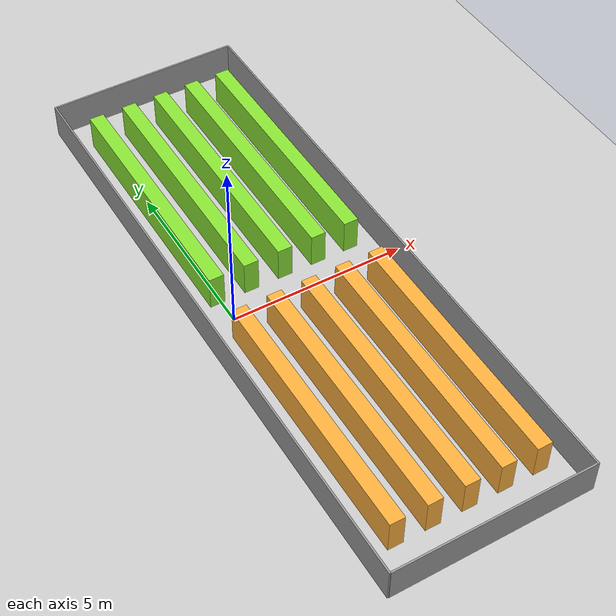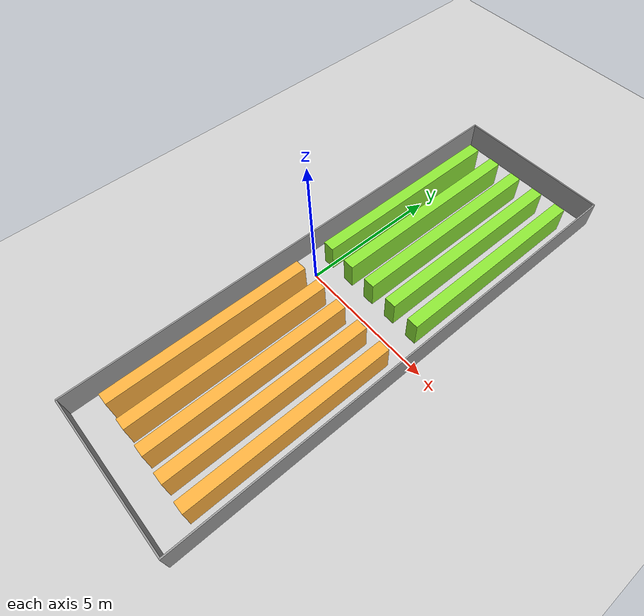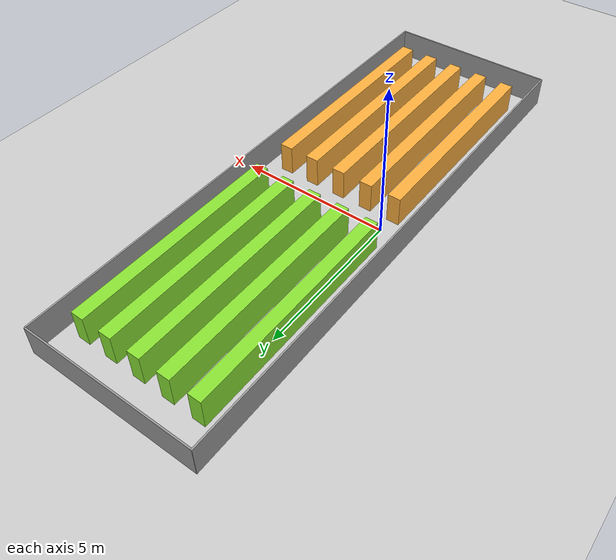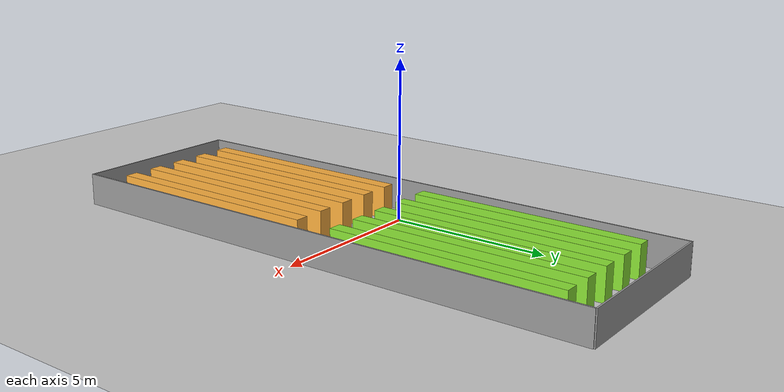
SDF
<sdf version="1.6">
 <world name="default">
  <light name="sun" type="directional">
   <pose>0 0 10 0 -0 0</pose>
   <diffuse>0.8 0.8 0.8 1</diffuse>
   <specular>0.2 0.2 0.2 1</specular>
   <attenuation>
    <range>1000</range>
    <constant>0.9</constant>
    <linear>0.01</linear>
    <quadratic>0.001</quadratic>
   </attenuation>
   <direction>-0.5 0.1 -0.9</direction>
  </light>
  <model name="ground_plane">
   <static>1</static>
   <link name="link">
    <collision name="collision">
     <geometry><plane><normal>0 0 1</normal><size>100 100</size></plane></geometry>
     <surface>
      <contact><collide_bitmask>65535</collide_bitmask></contact>
      <friction><ode><mu>100</mu><mu2>50</mu2></ode></friction>
     </surface>
    </collision>
    <visual name="visual">
     <cast_shadows>0</cast_shadows>
     <geometry><plane><normal>0 0 1</normal><size>100 100</size></plane></geometry>
     <material>
      <script><uri>file://media/materials/scripts/gazebo.material</uri><name>Gazebo/Grey</name></script>
     </material>
    </visual>
   </link>
  </model>
  <gravity>0 0 -9.8</gravity>
  <magnetic_field>6e-06 2.3e-05 -4.2e-05</magnetic_field>
  <atmosphere type="adiabatic"/>
  <physics name="default_physics" default="0" type="ode">
   <max_step_size>0.001</max_step_size>
   <real_time_factor>1</real_time_factor>
   <real_time_update_rate>1000</real_time_update_rate>
  </physics>
  <scene><ambient>0.4 0.4 0.4 1</ambient><background>0.7 0.7 0.7 1</background><shadows>1</shadows></scene>
  <audio><device>default</device></audio>
  <spherical_coordinates>
   <surface_model>EARTH_WGS84</surface_model>
   <latitude_deg>0</latitude_deg>
   <longitude_deg>0</longitude_deg>
   <elevation>0</elevation>
   <heading_deg>0</heading_deg>
  </spherical_coordinates>
  <model name="wall1">
   <link name="link">
    <inertial>
     <mass>1</mass>
     <inertia>
      <ixx>0.166667</ixx>
      <ixy>0</ixy>
      <ixz>0</ixz>
      <iyy>0.166667</iyy>
      <iyz>0</iyz>
      <izz>0.166667</izz>
     </inertia>
    </inertial>
    <visual name="visual">
     <geometry><box><size>0.05 17.55 1</size></box></geometry>
     <material>
      <script><name>Gazebo/Grey</name><uri>file://media/materials/scripts/gazebo.material</uri></script>
      <shader type="vertex"><normal_map>__default__</normal_map></shader>
      <ambient>0 0 0 1</ambient>
      <diffuse>0.7 0.7 0.7 1</diffuse>
      <specular>0.01 0.01 0.01 1</specular>
      <emissive>0 0 0 1</emissive>
     </material>
    </visual>
    <collision name="collision">
     <geometry><box><size>1 1 1</size></box></geometry>
     <surface>
      <friction>
       <ode><mu>1</mu><mu2>1</mu2><fdir1>0 0 0</fdir1><slip1>0</slip1><slip2>0</slip2></ode>
       <torsional>
        <coefficient>1</coefficient>
        <patch_radius>0</patch_radius>
        <surface_radius>0</surface_radius>
        <use_patch_radius>1</use_patch_radius>
        <ode><slip>0</slip></ode>
       </torsional>
      </friction>
      <bounce><restitution_coefficient>0</restitution_coefficient><threshold>1e+06</threshold></bounce>
      <contact>
       <collide_without_contact>0</collide_without_contact>
       <collide_without_contact_bitmask>1</collide_without_contact_bitmask>
       <collide_bitmask>1</collide_bitmask>
       <ode>
        <soft_cfm>0</soft_cfm>
        <soft_erp>0.2</soft_erp>
        <kp>1e+13</kp>
        <kd>1</kd>
        <max_vel>0.01</max_vel>
        <min_depth>0</min_depth>
       </ode>
       <bullet>
        <split_impulse>1</split_impulse>
        <split_impulse_penetration_threshold>-0.01</split_impulse_penetration_threshold>
        <soft_cfm>0</soft_cfm>
        <soft_erp>0.2</soft_erp>
        <kp>1e+13</kp>
        <kd>1</kd>
       </bullet>
      </contact>
     </surface>
    </collision>
   </link>
   <static>0</static>
   <pose>-0.940116 0.069997 0.5 0 -0 5e-06</pose>
  </model>
  <model name="wall1_clone">
   <link name="link">
    <inertial>
     <mass>1</mass>
     <inertia>
      <ixx>0.166667</ixx>
      <ixy>0</ixy>
      <ixz>0</ixz>
      <iyy>0.166667</iyy>
      <iyz>0</iyz>
      <izz>0.166667</izz>
     </inertia>
    </inertial>
    <visual name="visual">
     <geometry><box><size>0.05 17.55 1</size></box></geometry>
     <material>
      <script><name>Gazebo/Grey</name><uri>file://media/materials/scripts/gazebo.material</uri></script>
      <shader type="vertex"><normal_map>__default__</normal_map></shader>
      <ambient>0.3 0.3 0.3 1</ambient>
      <diffuse>0.7 0.7 0.7 1</diffuse>
      <specular>0.01 0.01 0.01 1</specular>
      <emissive>0 0 0 1</emissive>
     </material>
    </visual>
    <collision name="collision">
     <geometry><box><size>1 1 1</size></box></geometry>
     <surface>
      <friction>
       <ode><mu>1</mu><mu2>1</mu2><fdir1>0 0 0</fdir1><slip1>0</slip1><slip2>0</slip2></ode>
       <torsional>
        <coefficient>1</coefficient>
        <patch_radius>0</patch_radius>
        <surface_radius>0</surface_radius>
        <use_patch_radius>1</use_patch_radius>
        <ode><slip>0</slip></ode>
       </torsional>
      </friction>
      <bounce><restitution_coefficient>0</restitution_coefficient><threshold>1e+06</threshold></bounce>
      <contact>
       <collide_without_contact>0</collide_without_contact>
       <collide_without_contact_bitmask>1</collide_without_contact_bitmask>
       <collide_bitmask>1</collide_bitmask>
       <ode>
        <soft_cfm>0</soft_cfm>
        <soft_erp>0.2</soft_erp>
        <kp>1e+13</kp>
        <kd>1</kd>
        <max_vel>0.01</max_vel>
        <min_depth>0</min_depth>
       </ode>
       <bullet>
        <split_impulse>1</split_impulse>
        <split_impulse_penetration_threshold>-0.01</split_impulse_penetration_threshold>
        <soft_cfm>0</soft_cfm>
        <soft_erp>0.2</soft_erp>
        <kp>1e+13</kp>
        <kd>1</kd>
       </bullet>
      </contact>
     </surface>
    </collision>
   </link>
   <static>0</static>
   <pose>4.64887 0.074809 0.499995 -1e-05 -0 -0</pose>
  </model>
  <model name="l_wall">
   <link name="link">
    <inertial>
     <mass>1</mass>
     <inertia>
      <ixx>0.166667</ixx>
      <ixy>0</ixy>
      <ixz>0</ixz>
      <iyy>0.166667</iyy>
      <iyz>0</iyz>
      <izz>0.166667</izz>
     </inertia>
    </inertial>
    <visual name="visual">
     <geometry><box><size>0.05 5.6 1</size></box></geometry>
     <material>
      <script><name>Gazebo/Grey</name><uri>file://media/materials/scripts/gazebo.material</uri></script>
      <ambient>0 0 0 1</ambient>
      <shader type="vertex"><normal_map>__default__</normal_map></shader>
      <diffuse>0.7 0.7 0.7 1</diffuse>
      <specular>0.01 0.01 0.01 1</specular>
      <emissive>0 0 0 1</emissive>
     </material>
    </visual>
    <collision name="collision">
     <geometry><box><size>1 1 1</size></box></geometry>
     <surface>
      <friction>
       <ode><mu>1</mu><mu2>1</mu2><fdir1>0 0 0</fdir1><slip1>0</slip1><slip2>0</slip2></ode>
       <torsional>
        <coefficient>1</coefficient>
        <patch_radius>0</patch_radius>
        <surface_radius>0</surface_radius>
        <use_patch_radius>1</use_patch_radius>
        <ode><slip>0</slip></ode>
       </torsional>
      </friction>
      <bounce><restitution_coefficient>0</restitution_coefficient><threshold>1e+06</threshold></bounce>
      <contact>
       <collide_without_contact>0</collide_without_contact>
       <collide_without_contact_bitmask>1</collide_without_contact_bitmask>
       <collide_bitmask>1</collide_bitmask>
       <ode>
        <soft_cfm>0</soft_cfm>
        <soft_erp>0.2</soft_erp>
        <kp>1e+13</kp>
        <kd>1</kd>
        <max_vel>0.01</max_vel>
        <min_depth>0</min_depth>
       </ode>
       <bullet>
        <split_impulse>1</split_impulse>
        <split_impulse_penetration_threshold>-0.01</split_impulse_penetration_threshold>
        <soft_cfm>0</soft_cfm>
        <soft_erp>0.2</soft_erp>
        <kp>1e+13</kp>
        <kd>1</kd>
       </bullet>
      </contact>
     </surface>
    </collision>
   </link>
   <static>0</static>
   <pose>1.87323 -8.68557 0.5 -0 -0 -1.56724</pose>
  </model>
  <model name="r_shelf_05">
   <link name="link">
    <inertial>
     <mass>1</mass>
     <inertia>
      <ixx>0.166667</ixx>
      <ixy>0</ixy>
      <ixz>0</ixz>
      <iyy>0.166667</iyy>
      <iyz>0</iyz>
      <izz>0.166667</izz>
     </inertia>
    </inertial>
    <visual name="visual">
     <geometry><box><size>0.42 7.2 1</size></box></geometry>
     <material>
      <script><name>Gazebo/Grey</name><uri>file://media/materials/scripts/gazebo.material</uri></script>
      <shader type="vertex"><normal_map>__default__</normal_map></shader>
      <ambient>0.541 0.886 0.204 1</ambient>
      <diffuse>0.7 0.7 0.7 1</diffuse>
      <specular>0.01 0.01 0.01 1</specular>
      <emissive>0 0 0 1</emissive>
     </material>
    </visual>
    <collision name="collision">
     <geometry><box><size>1 1 1</size></box></geometry>
     <surface>
      <friction>
       <ode><mu>1</mu><mu2>1</mu2><fdir1>0 0 0</fdir1><slip1>0</slip1><slip2>0</slip2></ode>
       <torsional>
        <coefficient>1</coefficient>
        <patch_radius>0</patch_radius>
        <surface_radius>0</surface_radius>
        <use_patch_radius>1</use_patch_radius>
        <ode><slip>0</slip></ode>
       </torsional>
      </friction>
      <bounce><restitution_coefficient>0</restitution_coefficient><threshold>1e+06</threshold></bounce>
      <contact>
       <collide_without_contact>0</collide_without_contact>
       <collide_without_contact_bitmask>1</collide_without_contact_bitmask>
       <collide_bitmask>1</collide_bitmask>
       <ode>
        <soft_cfm>0</soft_cfm>
        <soft_erp>0.2</soft_erp>
        <kp>1e+13</kp>
        <kd>1</kd>
        <max_vel>0.01</max_vel>
        <min_depth>0</min_depth>
       </ode>
       <bullet>
        <split_impulse>1</split_impulse>
        <split_impulse_penetration_threshold>-0.01</split_impulse_penetration_threshold>
        <soft_cfm>0</soft_cfm>
        <soft_erp>0.2</soft_erp>
        <kp>1e+13</kp>
        <kd>1</kd>
       </bullet>
      </contact>
     </surface>
    </collision>
   </link>
   <static>0</static>
   <pose>3.90089 4.27078 0.5 0 -0 -4.5e-05</pose>
  </model>
  <model name="r_shelf_02_0">
   <link name="link">
    <inertial>
     <mass>1</mass>
     <inertia>
      <ixx>0.166667</ixx>
      <ixy>0</ixy>
      <ixz>0</ixz>
      <iyy>0.166667</iyy>
      <iyz>0</iyz>
      <izz>0.166667</izz>
     </inertia>
    </inertial>
    <visual name="visual">
     <geometry><box><size>0.42 7.2 1</size></box></geometry>
     <material>
      <script><name>Gazebo/Grey</name><uri>file://media/materials/scripts/gazebo.material</uri></script>
      <shader type="vertex"><normal_map>__default__</normal_map></shader>
      <ambient>0.541 0.886 0.204 1</ambient>
      <diffuse>0.7 0.7 0.7 1</diffuse>
      <specular>0.01 0.01 0.01 1</specular>
      <emissive>0 0 0 1</emissive>
     </material>
    </visual>
    <collision name="collision">
     <geometry><box><size>1 1.89269 1</size></box></geometry>
     <surface>
      <friction>
       <ode><mu>1</mu><mu2>1</mu2><fdir1>0 0 0</fdir1><slip1>0</slip1><slip2>0</slip2></ode>
       <torsional>
        <coefficient>1</coefficient>
        <patch_radius>0</patch_radius>
        <surface_radius>0</surface_radius>
        <use_patch_radius>1</use_patch_radius>
        <ode><slip>0</slip></ode>
       </torsional>
      </friction>
      <bounce><restitution_coefficient>0</restitution_coefficient><threshold>1e+06</threshold></bounce>
      <contact>
       <collide_without_contact>0</collide_without_contact>
       <collide_without_contact_bitmask>1</collide_without_contact_bitmask>
       <collide_bitmask>1</collide_bitmask>
       <ode>
        <soft_cfm>0</soft_cfm>
        <soft_erp>0.2</soft_erp>
        <kp>1e+13</kp>
        <kd>1</kd>
        <max_vel>0.01</max_vel>
        <min_depth>0</min_depth>
       </ode>
       <bullet>
        <split_impulse>1</split_impulse>
        <split_impulse_penetration_threshold>-0.01</split_impulse_penetration_threshold>
        <soft_cfm>0</soft_cfm>
        <soft_erp>0.2</soft_erp>
        <kp>1e+13</kp>
        <kd>1</kd>
       </bullet>
      </contact>
     </surface>
    </collision>
   </link>
   <static>0</static>
   <pose>2.90089 4.27002 0.499991 -1e-05 -0 -4.3e-05</pose>
  </model>
  <model name="r_shelf_03">
   <link name="link">
    <inertial>
     <mass>1</mass>
     <inertia>
      <ixx>0.166667</ixx>
      <ixy>0</ixy>
      <ixz>0</ixz>
      <iyy>0.166667</iyy>
      <iyz>0</iyz>
      <izz>0.166667</izz>
     </inertia>
    </inertial>
    <visual name="visual">
     <geometry><box><size>0.42 7.2 1</size></box></geometry>
     <material>
      <script><name>Gazebo/Grey</name><uri>file://media/materials/scripts/gazebo.material</uri></script>
      <shader type="vertex"><normal_map>__default__</normal_map></shader>
      <ambient>0.541 0.886 0.204 1</ambient>
      <diffuse>0.7 0.7 0.7 1</diffuse>
      <specular>0.01 0.01 0.01 1</specular>
      <emissive>0 0 0 1</emissive>
     </material>
    </visual>
    <collision name="collision">
     <geometry><box><size>1 1 1</size></box></geometry>
     <surface>
      <friction>
       <ode><mu>1</mu><mu2>1</mu2><fdir1>0 0 0</fdir1><slip1>0</slip1><slip2>0</slip2></ode>
       <torsional>
        <coefficient>1</coefficient>
        <patch_radius>0</patch_radius>
        <surface_radius>0</surface_radius>
        <use_patch_radius>1</use_patch_radius>
        <ode><slip>0</slip></ode>
       </torsional>
      </friction>
      <bounce><restitution_coefficient>0</restitution_coefficient><threshold>1e+06</threshold></bounce>
      <contact>
       <collide_without_contact>0</collide_without_contact>
       <collide_without_contact_bitmask>1</collide_without_contact_bitmask>
       <collide_bitmask>1</collide_bitmask>
       <ode>
        <soft_cfm>0</soft_cfm>
        <soft_erp>0.2</soft_erp>
        <kp>1e+13</kp>
        <kd>1</kd>
        <max_vel>0.01</max_vel>
        <min_depth>0</min_depth>
       </ode>
       <bullet>
        <split_impulse>1</split_impulse>
        <split_impulse_penetration_threshold>-0.01</split_impulse_penetration_threshold>
        <soft_cfm>0</soft_cfm>
        <soft_erp>0.2</soft_erp>
        <kp>1e+13</kp>
        <kd>1</kd>
       </bullet>
      </contact>
     </surface>
    </collision>
   </link>
   <static>0</static>
   <pose>1.90086 4.26998 0.499995 -1e-05 0 -4.8e-05</pose>
  </model>
  <model name="r_shelf_04_0">
   <link name="link">
    <inertial>
     <mass>1</mass>
     <inertia>
      <ixx>0.166667</ixx>
      <ixy>0</ixy>
      <ixz>0</ixz>
      <iyy>0.166667</iyy>
      <iyz>0</iyz>
      <izz>0.166667</izz>
     </inertia>
    </inertial>
    <visual name="visual">
     <geometry><box><size>0.42 7.2 1</size></box></geometry>
     <material>
      <script><name>Gazebo/Grey</name><uri>file://media/materials/scripts/gazebo.material</uri></script>
      <shader type="vertex"><normal_map>__default__</normal_map></shader>
      <ambient>0.541 0.886 0.204 1</ambient>
      <diffuse>0.7 0.7 0.7 1</diffuse>
      <specular>0.01 0.01 0.01 1</specular>
      <emissive>0 0 0 1</emissive>
     </material>
    </visual>
    <collision name="collision">
     <geometry><box><size>1 1 1</size></box></geometry>
     <surface>
      <friction>
       <ode><mu>1</mu><mu2>1</mu2><fdir1>0 0 0</fdir1><slip1>0</slip1><slip2>0</slip2></ode>
       <torsional>
        <coefficient>1</coefficient>
        <patch_radius>0</patch_radius>
        <surface_radius>0</surface_radius>
        <use_patch_radius>1</use_patch_radius>
        <ode><slip>0</slip></ode>
       </torsional>
      </friction>
      <bounce><restitution_coefficient>0</restitution_coefficient><threshold>1e+06</threshold></bounce>
      <contact>
       <collide_without_contact>0</collide_without_contact>
       <collide_without_contact_bitmask>1</collide_without_contact_bitmask>
       <collide_bitmask>1</collide_bitmask>
       <ode>
        <soft_cfm>0</soft_cfm>
        <soft_erp>0.2</soft_erp>
        <kp>1e+13</kp>
        <kd>1</kd>
        <max_vel>0.01</max_vel>
        <min_depth>0</min_depth>
       </ode>
       <bullet>
        <split_impulse>1</split_impulse>
        <split_impulse_penetration_threshold>-0.01</split_impulse_penetration_threshold>
        <soft_cfm>0</soft_cfm>
        <soft_erp>0.2</soft_erp>
        <kp>1e+13</kp>
        <kd>1</kd>
       </bullet>
      </contact>
     </surface>
    </collision>
   </link>
   <static>0</static>
   <pose>0.900855 4.27003 0.499995 0 1e-05 -4.7e-05</pose>
  </model>
  <model name="r_shelf_05_0">
   <link name="link">
    <inertial>
     <mass>1</mass>
     <inertia>
      <ixx>0.166667</ixx>
      <ixy>0</ixy>
      <ixz>0</ixz>
      <iyy>0.166667</iyy>
      <iyz>0</iyz>
      <izz>0.166667</izz>
     </inertia>
    </inertial>
    <visual name="visual">
     <geometry><box><size>0.42 7.2 1</size></box></geometry>
     <material>
      <script><name>Gazebo/Grey</name><uri>file://media/materials/scripts/gazebo.material</uri></script>
      <shader type="vertex"><normal_map>__default__</normal_map></shader>
      <ambient>0.541 0.886 0.204 1</ambient>
      <diffuse>0.7 0.7 0.7 1</diffuse>
      <specular>0.01 0.01 0.01 1</specular>
      <emissive>0 0 0 1</emissive>
     </material>
    </visual>
    <collision name="collision">
     <geometry><box><size>1 1 1</size></box></geometry>
     <surface>
      <friction>
       <ode><mu>1</mu><mu2>1</mu2><fdir1>0 0 0</fdir1><slip1>0</slip1><slip2>0</slip2></ode>
       <torsional>
        <coefficient>1</coefficient>
        <patch_radius>0</patch_radius>
        <surface_radius>0</surface_radius>
        <use_patch_radius>1</use_patch_radius>
        <ode><slip>0</slip></ode>
       </torsional>
      </friction>
      <bounce><restitution_coefficient>0</restitution_coefficient><threshold>1e+06</threshold></bounce>
      <contact>
       <collide_without_contact>0</collide_without_contact>
       <collide_without_contact_bitmask>1</collide_without_contact_bitmask>
       <collide_bitmask>1</collide_bitmask>
       <ode>
        <soft_cfm>0</soft_cfm>
        <soft_erp>0.2</soft_erp>
        <kp>1e+13</kp>
        <kd>1</kd>
        <max_vel>0.01</max_vel>
        <min_depth>0</min_depth>
       </ode>
       <bullet>
        <split_impulse>1</split_impulse>
        <split_impulse_penetration_threshold>-0.01</split_impulse_penetration_threshold>
        <soft_cfm>0</soft_cfm>
        <soft_erp>0.2</soft_erp>
        <kp>1e+13</kp>
        <kd>1</kd>
       </bullet>
      </contact>
     </surface>
    </collision>
   </link>
   <static>0</static>
   <pose>-0.099162 4.27007 0.499995 0 -1e-05 -3.8e-05</pose>
  </model>
  <model name="l_shelf_05">
   <link name="link">
    <inertial>
     <mass>1</mass>
     <inertia>
      <ixx>0.166667</ixx>
      <ixy>0</ixy>
      <ixz>0</ixz>
      <iyy>0.166667</iyy>
      <iyz>0</iyz>
      <izz>0.166667</izz>
     </inertia>
    </inertial>
    <visual name="visual">
     <geometry><box><size>0.42 7.2 1</size></box></geometry>
     <material>
      <script><name>Gazebo/Grey</name><uri>file://media/materials/scripts/gazebo.material</uri></script>
      <shader type="vertex"><normal_map>__default__</normal_map></shader>
      <ambient>0.988 0.686 0.243 1</ambient>
      <diffuse>0.7 0.7 0.7 1</diffuse>
      <specular>0.01 0.01 0.01 1</specular>
      <emissive>0 0 0 1</emissive>
     </material>
    </visual>
    <collision name="collision">
     <geometry><box><size>1 1 1</size></box></geometry>
     <surface>
      <friction>
       <ode><mu>1</mu><mu2>1</mu2><fdir1>0 0 0</fdir1><slip1>0</slip1><slip2>0</slip2></ode>
       <torsional>
        <coefficient>1</coefficient>
        <patch_radius>0</patch_radius>
        <surface_radius>0</surface_radius>
        <use_patch_radius>1</use_patch_radius>
        <ode><slip>0</slip></ode>
       </torsional>
      </friction>
      <bounce><restitution_coefficient>0</restitution_coefficient><threshold>1e+06</threshold></bounce>
      <contact>
       <collide_without_contact>0</collide_without_contact>
       <collide_without_contact_bitmask>1</collide_without_contact_bitmask>
       <collide_bitmask>1</collide_bitmask>
       <ode>
        <soft_cfm>0</soft_cfm>
        <soft_erp>0.2</soft_erp>
        <kp>1e+13</kp>
        <kd>1</kd>
        <max_vel>0.01</max_vel>
        <min_depth>0</min_depth>
       </ode>
       <bullet>
        <split_impulse>1</split_impulse>
        <split_impulse_penetration_threshold>-0.01</split_impulse_penetration_threshold>
        <soft_cfm>0</soft_cfm>
        <soft_erp>0.2</soft_erp>
        <kp>1e+13</kp>
        <kd>1</kd>
       </bullet>
      </contact>
     </surface>
    </collision>
   </link>
   <static>0</static>
   <pose>3.90558 -4.10021 0.5 0 0 -1.9e-05</pose>
  </model>
  <model name="l_shelf_04">
   <link name="link">
    <inertial>
     <mass>1</mass>
     <inertia>
      <ixx>0.166667</ixx>
      <ixy>0</ixy>
      <ixz>0</ixz>
      <iyy>0.166667</iyy>
      <iyz>0</iyz>
      <izz>0.166667</izz>
     </inertia>
    </inertial>
    <visual name="visual">
     <geometry><box><size>0.42 7.2 1</size></box></geometry>
     <material>
      <script><name>Gazebo/Grey</name><uri>file://media/materials/scripts/gazebo.material</uri></script>
      <shader type="vertex"><normal_map>__default__</normal_map></shader>
      <ambient>0.988 0.686 0.243 1</ambient>
      <diffuse>0.7 0.7 0.7 1</diffuse>
      <specular>0.01 0.01 0.01 1</specular>
      <emissive>0 0 0 1</emissive>
     </material>
    </visual>
    <collision name="collision">
     <geometry><box><size>1 1 1</size></box></geometry>
     <surface>
      <friction>
       <ode><mu>1</mu><mu2>1</mu2><fdir1>0 0 0</fdir1><slip1>0</slip1><slip2>0</slip2></ode>
       <torsional>
        <coefficient>1</coefficient>
        <patch_radius>0</patch_radius>
        <surface_radius>0</surface_radius>
        <use_patch_radius>1</use_patch_radius>
        <ode><slip>0</slip></ode>
       </torsional>
      </friction>
      <bounce><restitution_coefficient>0</restitution_coefficient><threshold>1e+06</threshold></bounce>
      <contact>
       <collide_without_contact>0</collide_without_contact>
       <collide_without_contact_bitmask>1</collide_without_contact_bitmask>
       <collide_bitmask>1</collide_bitmask>
       <ode>
        <soft_cfm>0</soft_cfm>
        <soft_erp>0.2</soft_erp>
        <kp>1e+13</kp>
        <kd>1</kd>
        <max_vel>0.01</max_vel>
        <min_depth>0</min_depth>
       </ode>
       <bullet>
        <split_impulse>1</split_impulse>
        <split_impulse_penetration_threshold>-0.01</split_impulse_penetration_threshold>
        <soft_cfm>0</soft_cfm>
        <soft_erp>0.2</soft_erp>
        <kp>1e+13</kp>
        <kd>1</kd>
       </bullet>
      </contact>
     </surface>
    </collision>
   </link>
   <static>0</static>
   <pose>2.90556 -4.10016 0.5 0 -0 1.6e-05</pose>
  </model>
  <model name="l_shelf_03">
   <link name="link">
    <inertial>
     <mass>1</mass>
     <inertia>
      <ixx>0.166667</ixx>
      <ixy>0</ixy>
      <ixz>0</ixz>
      <iyy>0.166667</iyy>
      <iyz>0</iyz>
      <izz>0.166667</izz>
     </inertia>
    </inertial>
    <visual name="visual">
     <geometry><box><size>0.42 7.2 1</size></box></geometry>
     <material>
      <script><name>Gazebo/Grey</name><uri>file://media/materials/scripts/gazebo.material</uri></script>
      <shader type="vertex"><normal_map>__default__</normal_map></shader>
      <ambient>0.988 0.686 0.243 1</ambient>
      <diffuse>0.7 0.7 0.7 1</diffuse>
      <specular>0.01 0.01 0.01 1</specular>
      <emissive>0 0 0 1</emissive>
     </material>
    </visual>
    <collision name="collision">
     <geometry><box><size>1 1 1</size></box></geometry>
     <surface>
      <friction>
       <ode><mu>1</mu><mu2>1</mu2><fdir1>0 0 0</fdir1><slip1>0</slip1><slip2>0</slip2></ode>
       <torsional>
        <coefficient>1</coefficient>
        <patch_radius>0</patch_radius>
        <surface_radius>0</surface_radius>
        <use_patch_radius>1</use_patch_radius>
        <ode><slip>0</slip></ode>
       </torsional>
      </friction>
      <bounce><restitution_coefficient>0</restitution_coefficient><threshold>1e+06</threshold></bounce>
      <contact>
       <collide_without_contact>0</collide_without_contact>
       <collide_without_contact_bitmask>1</collide_without_contact_bitmask>
       <collide_bitmask>1</collide_bitmask>
       <ode>
        <soft_cfm>0</soft_cfm>
        <soft_erp>0.2</soft_erp>
        <kp>1e+13</kp>
        <kd>1</kd>
        <max_vel>0.01</max_vel>
        <min_depth>0</min_depth>
       </ode>
       <bullet>
        <split_impulse>1</split_impulse>
        <split_impulse_penetration_threshold>-0.01</split_impulse_penetration_threshold>
        <soft_cfm>0</soft_cfm>
        <soft_erp>0.2</soft_erp>
        <kp>1e+13</kp>
        <kd>1</kd>
       </bullet>
      </contact>
     </surface>
    </collision>
   </link>
   <static>0</static>
   <pose>1.90549 -4.10016 0.5 0 -0 0.000141</pose>
  </model>
  <model name="l_shelf_02">
   <link name="link">
    <inertial>
     <mass>1</mass>
     <inertia>
      <ixx>0.166667</ixx>
      <ixy>0</ixy>
      <ixz>0</ixz>
      <iyy>0.166667</iyy>
      <iyz>0</iyz>
      <izz>0.166667</izz>
     </inertia>
    </inertial>
    <visual name="visual">
     <geometry><box><size>0.42 7.2 1</size></box></geometry>
     <material>
      <script><name>Gazebo/Grey</name><uri>file://media/materials/scripts/gazebo.material</uri></script>
      <shader type="vertex"><normal_map>__default__</normal_map></shader>
      <ambient>0.988 0.686 0.243 1</ambient>
      <diffuse>0.7 0.7 0.7 1</diffuse>
      <specular>0.01 0.01 0.01 1</specular>
      <emissive>0 0 0 1</emissive>
     </material>
    </visual>
    <collision name="collision">
     <geometry><box><size>1 1 1</size></box></geometry>
     <surface>
      <friction>
       <ode><mu>1</mu><mu2>1</mu2><fdir1>0 0 0</fdir1><slip1>0</slip1><slip2>0</slip2></ode>
       <torsional>
        <coefficient>1</coefficient>
        <patch_radius>0</patch_radius>
        <surface_radius>0</surface_radius>
        <use_patch_radius>1</use_patch_radius>
        <ode><slip>0</slip></ode>
       </torsional>
      </friction>
      <bounce><restitution_coefficient>0</restitution_coefficient><threshold>1e+06</threshold></bounce>
      <contact>
       <collide_without_contact>0</collide_without_contact>
       <collide_without_contact_bitmask>1</collide_without_contact_bitmask>
       <collide_bitmask>1</collide_bitmask>
       <ode>
        <soft_cfm>0</soft_cfm>
        <soft_erp>0.2</soft_erp>
        <kp>1e+13</kp>
        <kd>1</kd>
        <max_vel>0.01</max_vel>
        <min_depth>0</min_depth>
       </ode>
       <bullet>
        <split_impulse>1</split_impulse>
        <split_impulse_penetration_threshold>-0.01</split_impulse_penetration_threshold>
        <soft_cfm>0</soft_cfm>
        <soft_erp>0.2</soft_erp>
        <kp>1e+13</kp>
        <kd>1</kd>
       </bullet>
      </contact>
     </surface>
    </collision>
   </link>
   <static>0</static>
   <pose>0.905487 -4.09985 0.5 0 -0 0.000152</pose>
  </model>
  <model name="l_shelf_01">
   <link name="link">
    <inertial>
     <mass>1</mass>
     <inertia>
      <ixx>0.166667</ixx>
      <ixy>0</ixy>
      <ixz>0</ixz>
      <iyy>0.166667</iyy>
      <iyz>0</iyz>
      <izz>0.166667</izz>
     </inertia>
    </inertial>
    <visual name="visual">
     <geometry><box><size>0.42 7.2 1</size></box></geometry>
     <material>
      <script><name>Gazebo/Grey</name><uri>file://media/materials/scripts/gazebo.material</uri></script>
      <shader type="vertex"><normal_map>__default__</normal_map></shader>
      <ambient>0.988 0.686 0.243 1</ambient>
      <diffuse>0.7 0.7 0.7 1</diffuse>
      <specular>0.01 0.01 0.01 1</specular>
      <emissive>0 0 0 1</emissive>
     </material>
    </visual>
    <collision name="collision">
     <geometry><box><size>1 1 1</size></box></geometry>
     <surface>
      <friction>
       <ode><mu>1</mu><mu2>1</mu2><fdir1>0 0 0</fdir1><slip1>0</slip1><slip2>0</slip2></ode>
       <torsional>
        <coefficient>1</coefficient>
        <patch_radius>0</patch_radius>
        <surface_radius>0</surface_radius>
        <use_patch_radius>1</use_patch_radius>
        <ode><slip>0</slip></ode>
       </torsional>
      </friction>
      <bounce><restitution_coefficient>0</restitution_coefficient><threshold>1e+06</threshold></bounce>
      <contact>
       <collide_without_contact>0</collide_without_contact>
       <collide_without_contact_bitmask>1</collide_without_contact_bitmask>
       <collide_bitmask>1</collide_bitmask>
       <ode>
        <soft_cfm>0</soft_cfm>
        <soft_erp>0.2</soft_erp>
        <kp>1e+13</kp>
        <kd>1</kd>
        <max_vel>0.01</max_vel>
        <min_depth>0</min_depth>
       </ode>
       <bullet>
        <split_impulse>1</split_impulse>
        <split_impulse_penetration_threshold>-0.01</split_impulse_penetration_threshold>
        <soft_cfm>0</soft_cfm>
        <soft_erp>0.2</soft_erp>
        <kp>1e+13</kp>
        <kd>1</kd>
       </bullet>
      </contact>
     </surface>
    </collision>
   </link>
   <static>0</static>
   <pose>-0.094542 -4.09997 0.5 0 -0 0.000167</pose>
  </model>
  <model name="r_wall">
   <link name="link">
    <inertial>
     <mass>1</mass>
     <inertia>
      <ixx>0.166667</ixx>
      <ixy>0</ixy>
      <ixz>0</ixz>
      <iyy>0.166667</iyy>
      <iyz>0</iyz>
      <izz>0.166667</izz>
     </inertia>
    </inertial>
    <visual name="visual">
     <geometry><box><size>0.05 5.6 1</size></box></geometry>
     <material>
      <script><name>Gazebo/Grey</name><uri>file://media/materials/scripts/gazebo.material</uri></script>
      <ambient>0 0 0 1</ambient>
      <shader type="vertex"><normal_map>__default__</normal_map></shader>
      <diffuse>0.7 0.7 0.7 1</diffuse>
      <specular>0.01 0.01 0.01 1</specular>
      <emissive>0 0 0 1</emissive>
     </material>
    </visual>
    <collision name="collision">
     <geometry><box><size>1 1 1</size></box></geometry>
     <surface>
      <friction>
       <ode><mu>1</mu><mu2>1</mu2><fdir1>0 0 0</fdir1><slip1>0</slip1><slip2>0</slip2></ode>
       <torsional>
        <coefficient>1</coefficient>
        <patch_radius>0</patch_radius>
        <surface_radius>0</surface_radius>
        <use_patch_radius>1</use_patch_radius>
        <ode><slip>0</slip></ode>
       </torsional>
      </friction>
      <bounce><restitution_coefficient>0</restitution_coefficient><threshold>1e+06</threshold></bounce>
      <contact>
       <collide_without_contact>0</collide_without_contact>
       <collide_without_contact_bitmask>1</collide_without_contact_bitmask>
       <collide_bitmask>1</collide_bitmask>
       <ode>
        <soft_cfm>0</soft_cfm>
        <soft_erp>0.2</soft_erp>
        <kp>1e+13</kp>
        <kd>1</kd>
        <max_vel>0.01</max_vel>
        <min_depth>0</min_depth>
       </ode>
       <bullet>
        <split_impulse>1</split_impulse>
        <split_impulse_penetration_threshold>-0.01</split_impulse_penetration_threshold>
        <soft_cfm>0</soft_cfm>
        <soft_erp>0.2</soft_erp>
        <kp>1e+13</kp>
        <kd>1</kd>
       </bullet>
      </contact>
     </surface>
    </collision>
   </link>
   <static>0</static>
   <pose>1.85007 8.84178 0.499995 0 -1e-05 -1.56327</pose>
  </model>
 </world>
</sdf>
